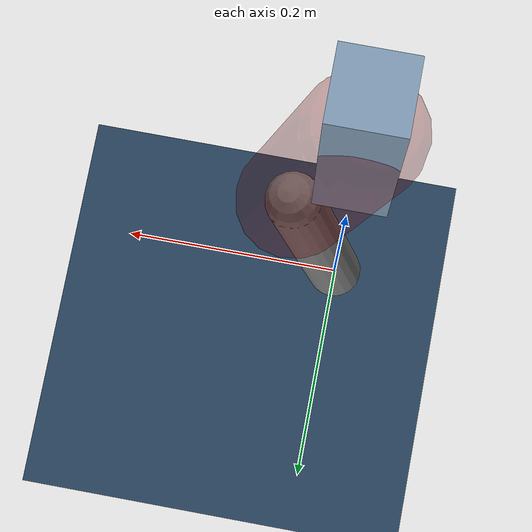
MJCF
<mujoco model="Hopper2D">
	<compiler inertiafromgeom="true" angle="radian" />
	<option timestep="0.001" integrator="implicit" cone="elliptic" solver="Newton" tolerance="1e-10" />

	<default>
		<geom contype="1" conaffinity="1" condim="3" friction="2 0.005 0.0001" solref="0.005 1" />
		<joint limited="true" damping="0.1" />
	</default>

	<asset>
		<texture name="skybox" type="skybox" builtin="gradient" rgb1=".4 .6 .8" rgb2="0 0 0" width="800" height="800" />
		<texture name="grid" type="2d" builtin="checker" rgb1=".1 .2 .3" rgb2=".2 .3 .4" width="300" height="300" mark="edge" markrgb=".2 .3 .4" />
		<material name="ground" texture="grid" texrepeat="1 1" texuniform="true" reflectance="0.1" />
		<material name="leg" rgba="0.5 0.6 0.7 1" />
	</asset>

	<worldbody>

		<geom name="floor" type="plane" size="5 5 0.25" material="ground" />

		<light directional="false" diffuse="0.8 0.8 0.8" specular="0.3 0.3 0.3" pos="0 0 2" dir="0 0 -1" />
		<light mode="targetbodycom" target="base" directional="false" diffuse="0.8 0.8 0.8" specular="0.3 0.3 0.3" pos="0 0 2" dir="0 0 -1" />

		<camera name="fixed" pos="0 -2 1" xyaxes="1 0 0 0 0 1" />
		<camera name="tracking" mode="trackcom" pos="0 -3 1" />

		<body name="root" pos="0 0 0.4261951780280634">
			<joint name="slide_x" type="slide" axis="1 0 0" range="-100 100" />
			<joint name="slide_z" type="slide" axis="0 0 1" range="0 10" />

			<body name="base" pos="0 0 0">
				<geom name="torso" type="box" size="0.03 0.03 0.1" mass="2.9330000000000003" material="leg" />

				<body name="link1" pos="0 0 0" euler="0 1.3497449052201798 0">
					<joint type="hinge" axis="0 -1 0" pos="0 0 0" name="hinge1" limited="true" range="-3.14 3.14" stiffness="0" damping="0.1" />
					<geom name="thigh" type="capsule" fromto="0 0 0 0.21167720227234846 0 0" size="0.05" rgba="0.5 0 0 0.3" mass="0.7587607259081061" />

					<body name="link2" pos="0.21167720227234846 0 0" euler="0 0.4292684606869058 0">
						<joint type="hinge" axis="0 -1 0" pos="0 0 0" name="hinge2" limited="true" range="-3.14 3.14" stiffness="0" damping="0.1" />
						<geom name="shank" type="capsule" fromto="0 0 0 0.22451797575571497 0 0" size="0.025" mass="0.421414380604572" />

					</body>
				</body>
			</body>
		</body>
	</worldbody>

	<actuator>
		<motor name="torque1" joint="hinge1" ctrlrange="-131.04924140397375 131.04924140397375" ctrllimited="true" gear="1" />
		<motor name="torque2" joint="hinge2" ctrlrange="-28.02413788140274 28.02413788140274" ctrllimited="true" gear="1" />
	</actuator>
</mujoco>
